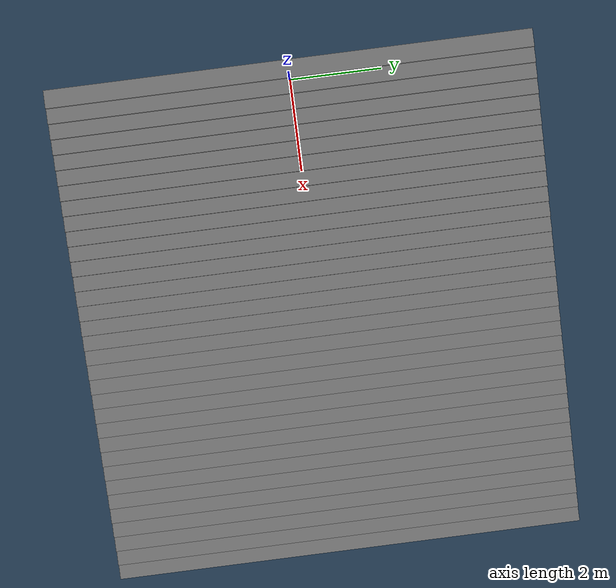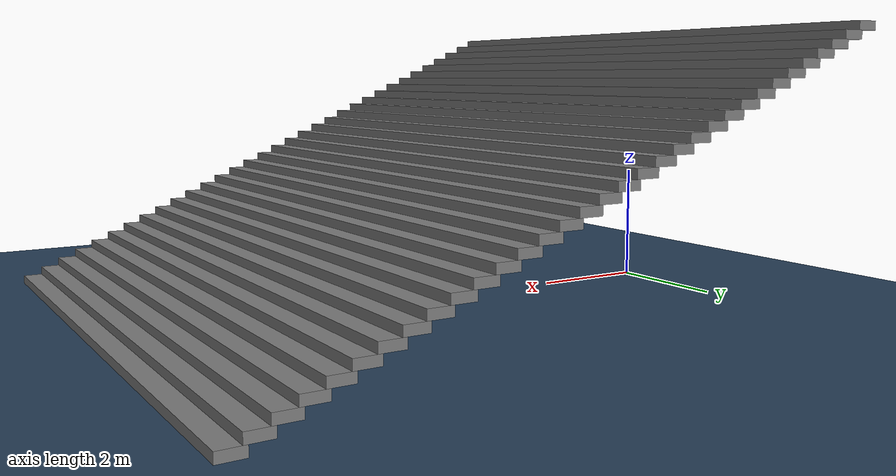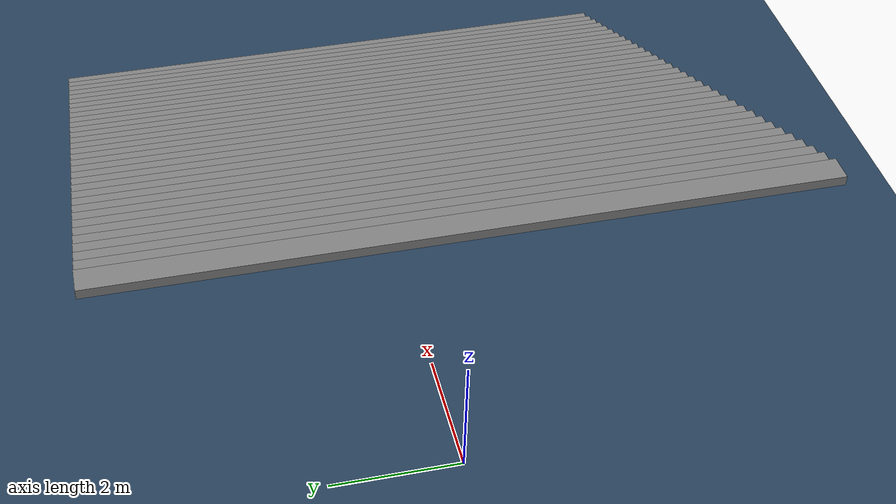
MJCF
<mujoco model="stairs_down_3">
  <!-- Terrain Type: stairs_down, Level: 3, Stairs step height: 0.1400 -->
  <statistic center="0 0 0.1" extent="0.8" />
  <visual>
    <headlight diffuse="0.6 0.6 0.6" ambient="0.3 0.3 0.3" specular="0 0 0" />
    <rgba haze="0.15 0.25 0.35 1" />
    <global azimuth="-130" elevation="-20" />
  </visual>
  <asset>
    <texture type="skybox" builtin="gradient" rgb1="0.3 0.5 0.7" rgb2="0 0 0" width="512" height="3072" />
    <texture type="2d" name="groundplane" builtin="checker" mark="edge" rgb1="0.2 0.3 0.4" rgb2="0.1 0.2 0.3" markrgb="0.8 0.8 0.8" width="300" height="300" />
    <material name="groundplane" texture="groundplane" texuniform="true" texrepeat="5 5" reflectance="0.0" />
  </asset>
  <worldbody>
    <light pos="0 0 1.5" dir="0 0 -1" directional="true" />
    <geom name="floor" size="0 0 0.05" type="plane" material="groundplane" />
    <geom pos="0.155 0.0 4.550000000000001" type="box" size="0.186 5.0 0.07" quat="1.0 0.0 0.0 0.0" />
    <geom pos="0.46499999999999997 0.0 4.410000000000001" type="box" size="0.186 5.0 0.07" quat="1.0 0.0 0.0 0.0" />
    <geom pos="0.7749999999999999 0.0 4.270000000000001" type="box" size="0.186 5.0 0.07" quat="1.0 0.0 0.0 0.0" />
    <geom pos="1.085 0.0 4.130000000000002" type="box" size="0.186 5.0 0.07" quat="1.0 0.0 0.0 0.0" />
    <geom pos="1.395 0.0 3.9900000000000015" type="box" size="0.186 5.0 0.07" quat="1.0 0.0 0.0 0.0" />
    <geom pos="1.705 0.0 3.8500000000000014" type="box" size="0.186 5.0 0.07" quat="1.0 0.0 0.0 0.0" />
    <geom pos="2.015 0.0 3.7100000000000013" type="box" size="0.186 5.0 0.07" quat="1.0 0.0 0.0 0.0" />
    <geom pos="2.325 0.0 3.570000000000001" type="box" size="0.186 5.0 0.07" quat="1.0 0.0 0.0 0.0" />
    <geom pos="2.6350000000000002 0.0 3.430000000000001" type="box" size="0.186 5.0 0.07" quat="1.0 0.0 0.0 0.0" />
    <geom pos="2.9450000000000003 0.0 3.290000000000001" type="box" size="0.186 5.0 0.07" quat="1.0 0.0 0.0 0.0" />
    <geom pos="3.2550000000000003 0.0 3.150000000000001" type="box" size="0.186 5.0 0.07" quat="1.0 0.0 0.0 0.0" />
    <geom pos="3.5650000000000004 0.0 3.0100000000000007" type="box" size="0.186 5.0 0.07" quat="1.0 0.0 0.0 0.0" />
    <geom pos="3.8750000000000004 0.0 2.8700000000000006" type="box" size="0.186 5.0 0.07" quat="1.0 0.0 0.0 0.0" />
    <geom pos="4.1850000000000005 0.0 2.7300000000000004" type="box" size="0.186 5.0 0.07" quat="1.0 0.0 0.0 0.0" />
    <geom pos="4.495 0.0 2.5900000000000003" type="box" size="0.186 5.0 0.07" quat="1.0 0.0 0.0 0.0" />
    <geom pos="4.805 0.0 2.45" type="box" size="0.186 5.0 0.07" quat="1.0 0.0 0.0 0.0" />
    <geom pos="5.114999999999999 0.0 2.31" type="box" size="0.186 5.0 0.07" quat="1.0 0.0 0.0 0.0" />
    <geom pos="5.424999999999999 0.0 2.17" type="box" size="0.186 5.0 0.07" quat="1.0 0.0 0.0 0.0" />
    <geom pos="5.7349999999999985 0.0 2.03" type="box" size="0.186 5.0 0.07" quat="1.0 0.0 0.0 0.0" />
    <geom pos="6.044999999999998 0.0 1.8899999999999997" type="box" size="0.186 5.0 0.07" quat="1.0 0.0 0.0 0.0" />
    <geom pos="6.354999999999998 0.0 1.7499999999999996" type="box" size="0.186 5.0 0.07" quat="1.0 0.0 0.0 0.0" />
    <geom pos="6.664999999999997 0.0 1.6099999999999994" type="box" size="0.186 5.0 0.07" quat="1.0 0.0 0.0 0.0" />
    <geom pos="6.974999999999997 0.0 1.4699999999999993" type="box" size="0.186 5.0 0.07" quat="1.0 0.0 0.0 0.0" />
    <geom pos="7.284999999999997 0.0 1.3299999999999992" type="box" size="0.186 5.0 0.07" quat="1.0 0.0 0.0 0.0" />
    <geom pos="7.594999999999996 0.0 1.189999999999999" type="box" size="0.186 5.0 0.07" quat="1.0 0.0 0.0 0.0" />
    <geom pos="7.904999999999996 0.0 1.049999999999999" type="box" size="0.186 5.0 0.07" quat="1.0 0.0 0.0 0.0" />
    <geom pos="8.214999999999996 0.0 0.9099999999999989" type="box" size="0.186 5.0 0.07" quat="1.0 0.0 0.0 0.0" />
    <geom pos="8.524999999999997 0.0 0.7699999999999989" type="box" size="0.186 5.0 0.07" quat="1.0 0.0 0.0 0.0" />
    <geom pos="8.834999999999997 0.0 0.6299999999999989" type="box" size="0.186 5.0 0.07" quat="1.0 0.0 0.0 0.0" />
    <geom pos="9.144999999999998 0.0 0.4899999999999989" type="box" size="0.186 5.0 0.07" quat="1.0 0.0 0.0 0.0" />
    <geom pos="9.454999999999998 0.0 0.34999999999999887" type="box" size="0.186 5.0 0.07" quat="1.0 0.0 0.0 0.0" />
    <geom pos="9.764999999999999 0.0 0.20999999999999885" type="box" size="0.186 5.0 0.07" quat="1.0 0.0 0.0 0.0" />
    <geom pos="10.075 0.0 0.06999999999999884" type="box" size="0.186 5.0 0.07" quat="1.0 0.0 0.0 0.0" />
  </worldbody>
</mujoco>
